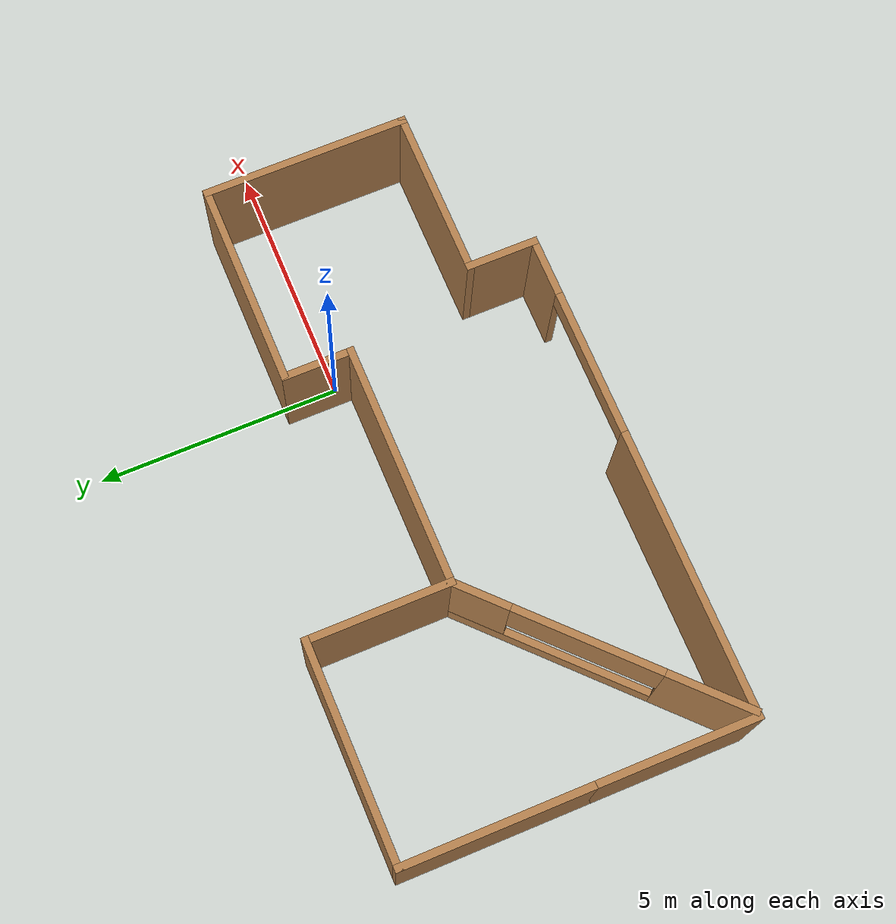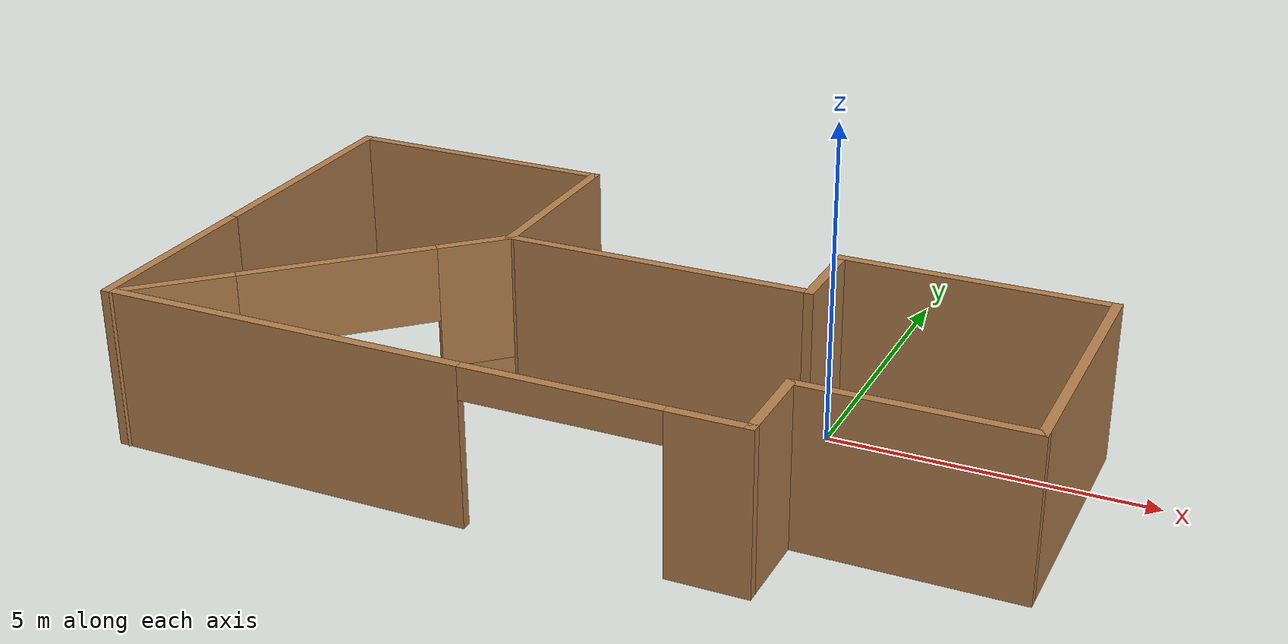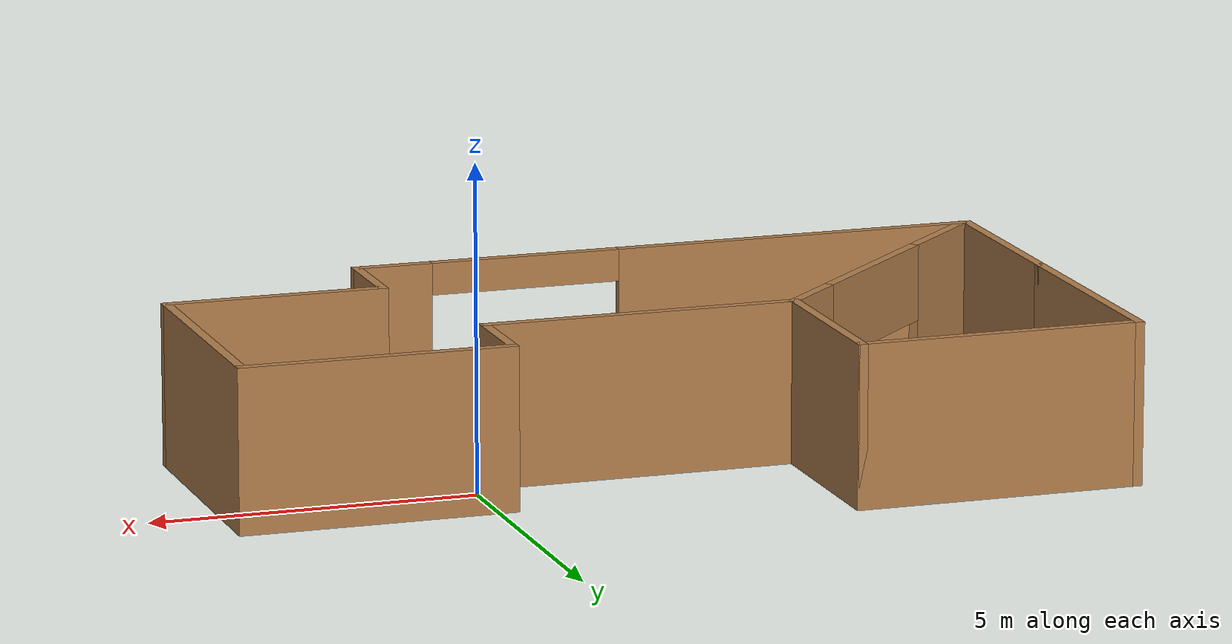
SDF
<?xml version='1.0'?>
<sdf version='1.6'>
  <model name='myBuilding'>
    <pose frame=''>-2.78026 -0.942601 0 0 -0 0</pose>
    <link name='Wall_10'>
      <collision name='Wall_10_Collision'>
        <geometry>
          <box>
            <size>3.5 0.15 2.5</size>
          </box>
        </geometry>
        <pose frame=''>0 0 1.25 0 -0 0</pose>
      </collision>
      <visual name='Wall_10_Visual'>
        <pose frame=''>0 0 1.25 0 -0 0</pose>
        <geometry>
          <box>
            <size>3.5 0.15 2.5</size>
          </box>
        </geometry>
        <material>
          <script>
            <uri>file://media/materials/scripts/gazebo.material</uri>
            <name>Gazebo/Wood</name>
          </script>
          <ambient>1 1 1 1</ambient>
        </material>
      </visual>
      <pose frame=''>4.975 -2.10948 0 0 -0 3.14159</pose>
    </link>
    <link name='Wall_11'>
      <collision name='Wall_11_Collision'>
        <geometry>
          <box>
            <size>1.5 0.15 2.5</size>
          </box>
        </geometry>
        <pose frame=''>0 0 1.25 0 -0 0</pose>
      </collision>
      <visual name='Wall_11_Visual'>
        <pose frame=''>0 0 1.25 0 -0 0</pose>
        <geometry>
          <box>
            <size>1.5 0.15 2.5</size>
          </box>
        </geometry>
        <material>
          <script>
            <uri>file://media/materials/scripts/gazebo.material</uri>
            <name>Gazebo/Wood</name>
          </script>
          <ambient>1 1 1 1</ambient>
        </material>
      </visual>
      <pose frame=''>3.3 -2.78448 0 0 0 -1.5708</pose>
    </link>
    <link name='Wall_12'>
      <pose frame=''>-1.625 -3.45948 0 0 -0 3.14159</pose>
      <visual name='Wall_12_Visual_0'>
        <pose frame=''>-4.37458 0 1.25 0 -0 0</pose>
        <geometry>
          <box>
            <size>1.25085 0.15 2.5</size>
          </box>
        </geometry>
        <material>
          <script>
            <uri>file://media/materials/scripts/gazebo.material</uri>
            <name>Gazebo/Wood</name>
          </script>
          <ambient>1 1 1 1</ambient>
        </material>
      </visual>
      <collision name='Wall_12_Collision_0'>
        <geometry>
          <box>
            <size>1.25085 0.15 2.5</size>
          </box>
        </geometry>
        <pose frame=''>-4.37458 0 1.25 0 -0 0</pose>
      </collision>
      <visual name='Wall_12_Visual_1'>
        <pose frame=''>2.12542 0 1.25 0 -0 0</pose>
        <geometry>
          <box>
            <size>5.74915 0.15 2.5</size>
          </box>
        </geometry>
        <material>
          <script>
            <uri>file://media/materials/scripts/gazebo.material</uri>
            <name>Gazebo/Wood</name>
          </script>
          <ambient>1 1 1 1</ambient>
        </material>
      </visual>
      <collision name='Wall_12_Collision_1'>
        <geometry>
          <box>
            <size>5.74915 0.15 2.5</size>
          </box>
        </geometry>
        <pose frame=''>2.12542 0 1.25 0 -0 0</pose>
      </collision>
      <visual name='Wall_12_Visual_2'>
        <pose frame=''>-2.24915 0 2.25 0 -0 0</pose>
        <geometry>
          <box>
            <size>3 0.15 0.5</size>
          </box>
        </geometry>
        <material>
          <script>
            <uri>file://media/materials/scripts/gazebo.material</uri>
            <name>Gazebo/Wood</name>
          </script>
          <ambient>1 1 1 1</ambient>
        </material>
      </visual>
      <collision name='Wall_12_Collision_2'>
        <geometry>
          <box>
            <size>3 0.15 0.5</size>
          </box>
        </geometry>
        <pose frame=''>-2.24915 0 2.25 0 -0 0</pose>
      </collision>
    </link>
    <link name='Wall_13'>
      <pose frame=''>-4.425 -1.40948 0 0 -0 0.767436</pose>
      <visual name='Wall_13_Visual_0'>
        <pose frame=''>-2.12508 0 1.25 0 -0 0</pose>
        <geometry>
          <box>
            <size>1.80513 0.15 2.5</size>
          </box>
        </geometry>
        <material>
          <script>
            <uri>file://media/materials/scripts/gazebo.material</uri>
            <name>Gazebo/Wood</name>
          </script>
          <ambient>1 1 1 1</ambient>
        </material>
      </visual>
      <collision name='Wall_13_Collision_0'>
        <geometry>
          <box>
            <size>1.80513 0.15 2.5</size>
          </box>
        </geometry>
        <pose frame=''>-2.12508 0 1.25 0 -0 0</pose>
      </collision>
      <visual name='Wall_13_Visual_1'>
        <pose frame=''>0.902564 0 0.25 0 -0 0</pose>
        <geometry>
          <box>
            <size>4.25017 0.15 0.5</size>
          </box>
        </geometry>
        <material>
          <script>
            <uri>file://media/materials/scripts/gazebo.material</uri>
            <name>Gazebo/Wood</name>
          </script>
          <ambient>1 1 1 1</ambient>
        </material>
      </visual>
      <collision name='Wall_13_Collision_1'>
        <geometry>
          <box>
            <size>4.25017 0.15 0.5</size>
          </box>
        </geometry>
        <pose frame=''>0.902564 0 0.25 0 -0 0</pose>
      </collision>
      <visual name='Wall_13_Visual_2'>
        <pose frame=''>2.40256 0 1.5 0 -0 0</pose>
        <geometry>
          <box>
            <size>1.25017 0.15 2</size>
          </box>
        </geometry>
        <material>
          <script>
            <uri>file://media/materials/scripts/gazebo.material</uri>
            <name>Gazebo/Wood</name>
          </script>
          <ambient>1 1 1 1</ambient>
        </material>
      </visual>
      <collision name='Wall_13_Collision_2'>
        <geometry>
          <box>
            <size>1.25017 0.15 2</size>
          </box>
        </geometry>
        <pose frame=''>2.40256 0 1.5 0 -0 0</pose>
      </collision>
      <visual name='Wall_13_Visual_3'>
        <pose frame=''>0.277481 0 1.9 0 -0 0</pose>
        <geometry>
          <box>
            <size>3 0.15 1.2</size>
          </box>
        </geometry>
        <material>
          <script>
            <uri>file://media/materials/scripts/gazebo.material</uri>
            <name>Gazebo/Wood</name>
          </script>
          <ambient>1 1 1 1</ambient>
        </material>
      </visual>
      <collision name='Wall_13_Collision_3'>
        <geometry>
          <box>
            <size>3 0.15 1.2</size>
          </box>
        </geometry>
        <pose frame=''>0.277481 0 1.9 0 -0 0</pose>
      </collision>
    </link>
    <link name='Wall_15'>
      <collision name='Wall_15_Collision'>
        <geometry>
          <box>
            <size>3.25 0.15 2.5</size>
          </box>
        </geometry>
        <pose frame=''>0 0 1.25 0 -0 0</pose>
      </collision>
      <visual name='Wall_15_Visual'>
        <pose frame=''>0 0 1.25 0 -0 0</pose>
        <geometry>
          <box>
            <size>3.25 0.15 2.5</size>
          </box>
        </geometry>
        <material>
          <script>
            <uri>file://media/materials/scripts/gazebo.material</uri>
            <name>Gazebo/Wood</name>
          </script>
          <ambient>1 1 1 1</ambient>
        </material>
      </visual>
      <pose frame=''>-6.65 -1.90948 0 0 0 -1.5708</pose>
    </link>
    <link name='Wall_3'>
      <collision name='Wall_3_Collision'>
        <geometry>
          <box>
            <size>4 0.15 2.5</size>
          </box>
        </geometry>
        <pose frame=''>0 0 1.25 0 -0 0</pose>
      </collision>
      <visual name='Wall_3_Visual'>
        <pose frame=''>0 0 1.25 0 -0 0</pose>
        <geometry>
          <box>
            <size>4 0.15 2.5</size>
          </box>
        </geometry>
        <material>
          <script>
            <uri>file://media/materials/scripts/gazebo.material</uri>
            <name>Gazebo/Wood</name>
          </script>
          <ambient>1 1 1 1</ambient>
        </material>
      </visual>
      <pose frame=''>-6.65 1.56553 0 0 -0 1.5708</pose>
    </link>
    <link name='Wall_4'>
      <collision name='Wall_4_Collision'>
        <geometry>
          <box>
            <size>4.5 0.15 2.5</size>
          </box>
        </geometry>
        <pose frame=''>0 0 1.25 0 -0 0</pose>
      </collision>
      <visual name='Wall_4_Visual'>
        <pose frame=''>0 0 1.25 0 -0 0</pose>
        <geometry>
          <box>
            <size>4.5 0.15 2.5</size>
          </box>
        </geometry>
        <material>
          <script>
            <uri>file://media/materials/scripts/gazebo.material</uri>
            <name>Gazebo/Wood</name>
          </script>
          <ambient>1 1 1 1</ambient>
        </material>
      </visual>
      <pose frame=''>-4.475 3.49052 0 0 -0 0</pose>
    </link>
    <link name='Wall_5'>
      <collision name='Wall_5_Collision'>
        <geometry>
          <box>
            <size>3 0.15 2.5</size>
          </box>
        </geometry>
        <pose frame=''>0 0 1.25 0 -0 0</pose>
      </collision>
      <visual name='Wall_5_Visual'>
        <pose frame=''>0 0 1.25 0 -0 0</pose>
        <geometry>
          <box>
            <size>3 0.15 2.5</size>
          </box>
        </geometry>
        <material>
          <script>
            <uri>file://media/materials/scripts/gazebo.material</uri>
            <name>Gazebo/Wood</name>
          </script>
          <ambient>1 1 1 1</ambient>
        </material>
      </visual>
      <pose frame=''>-2.3 2.06552 0 0 0 -1.5708</pose>
    </link>
    <link name='Wall_6'>
      <collision name='Wall_6_Collision'>
        <geometry>
          <box>
            <size>5 0.15 2.5</size>
          </box>
        </geometry>
        <pose frame=''>0 0 1.25 0 -0 0</pose>
      </collision>
      <visual name='Wall_6_Visual'>
        <pose frame=''>0 0 1.25 0 -0 0</pose>
        <geometry>
          <box>
            <size>5 0.15 2.5</size>
          </box>
        </geometry>
        <material>
          <script>
            <uri>file://media/materials/scripts/gazebo.material</uri>
            <name>Gazebo/Wood</name>
          </script>
          <ambient>1 1 1 1</ambient>
        </material>
      </visual>
      <pose frame=''>0.125 0.640525 0 0 -0 0</pose>
    </link>
    <link name='Wall_7'>
      <collision name='Wall_7_Collision'>
        <geometry>
          <box>
            <size>1.5 0.15 2.5</size>
          </box>
        </geometry>
        <pose frame=''>0 0 1.25 0 -0 0</pose>
      </collision>
      <visual name='Wall_7_Visual'>
        <pose frame=''>0 0 1.25 0 -0 0</pose>
        <geometry>
          <box>
            <size>1.5 0.15 2.5</size>
          </box>
        </geometry>
        <material>
          <script>
            <uri>file://media/materials/scripts/gazebo.material</uri>
            <name>Gazebo/Wood</name>
          </script>
          <ambient>1 1 1 1</ambient>
        </material>
      </visual>
      <pose frame=''>2.55 1.31552 0 0 -0 1.5708</pose>
    </link>
    <link name='Wall_8'>
      <collision name='Wall_8_Collision'>
        <geometry>
          <box>
            <size>4.25 0.15 2.5</size>
          </box>
        </geometry>
        <pose frame=''>0 0 1.25 0 -0 0</pose>
      </collision>
      <visual name='Wall_8_Visual'>
        <pose frame=''>0 0 1.25 0 -0 0</pose>
        <geometry>
          <box>
            <size>4.25 0.15 2.5</size>
          </box>
        </geometry>
        <material>
          <script>
            <uri>file://media/materials/scripts/gazebo.material</uri>
            <name>Gazebo/Wood</name>
          </script>
          <ambient>1 1 1 1</ambient>
        </material>
      </visual>
      <pose frame=''>4.6 1.99053 0 0 -0 0</pose>
    </link>
    <link name='Wall_9'>
      <collision name='Wall_9_Collision'>
        <geometry>
          <box>
            <size>4.25 0.15 2.5</size>
          </box>
        </geometry>
        <pose frame=''>0 0 1.25 0 -0 0</pose>
      </collision>
      <visual name='Wall_9_Visual'>
        <pose frame=''>0 0 1.25 0 -0 0</pose>
        <geometry>
          <box>
            <size>4.25 0.15 2.5</size>
          </box>
        </geometry>
        <material>
          <script>
            <uri>file://media/materials/scripts/gazebo.material</uri>
            <name>Gazebo/Wood</name>
          </script>
          <ambient>1 1 1 1</ambient>
        </material>
      </visual>
      <pose frame=''>6.65 -0.059476 0 0 0 -1.5708</pose>
    </link>
    <static>1</static>
  </model>
</sdf>
